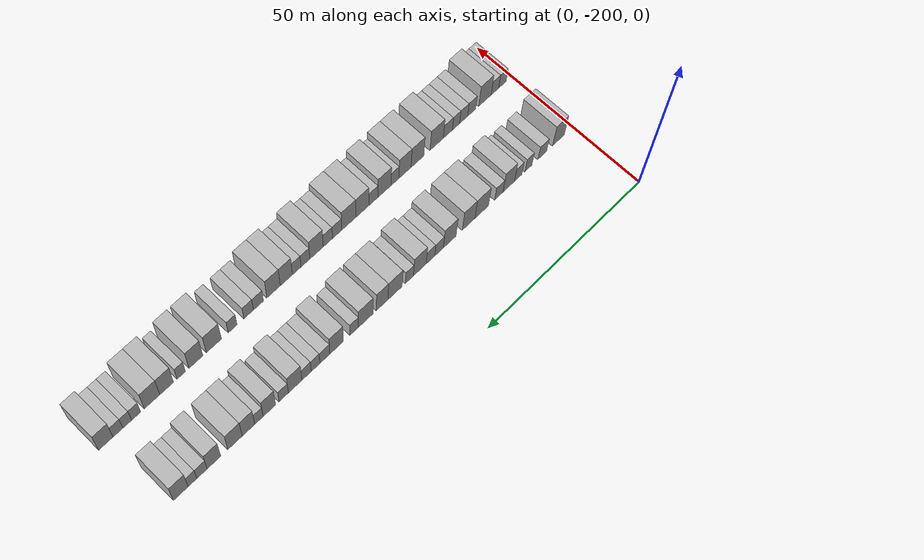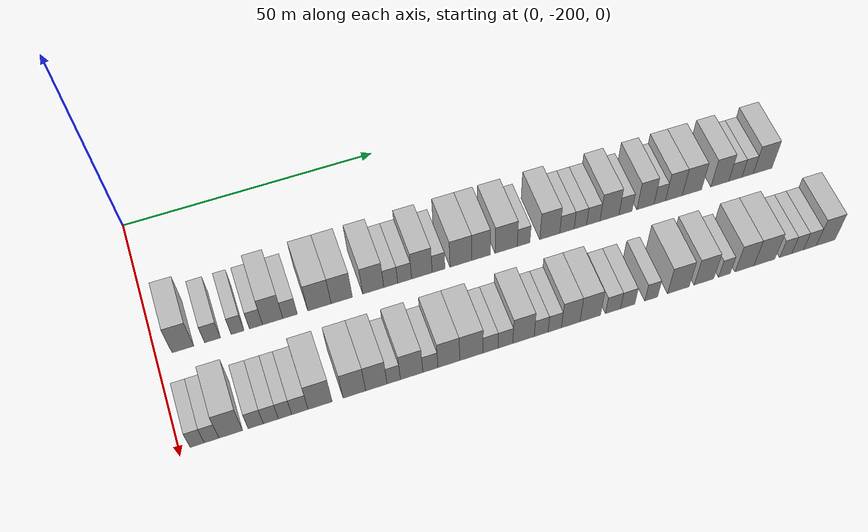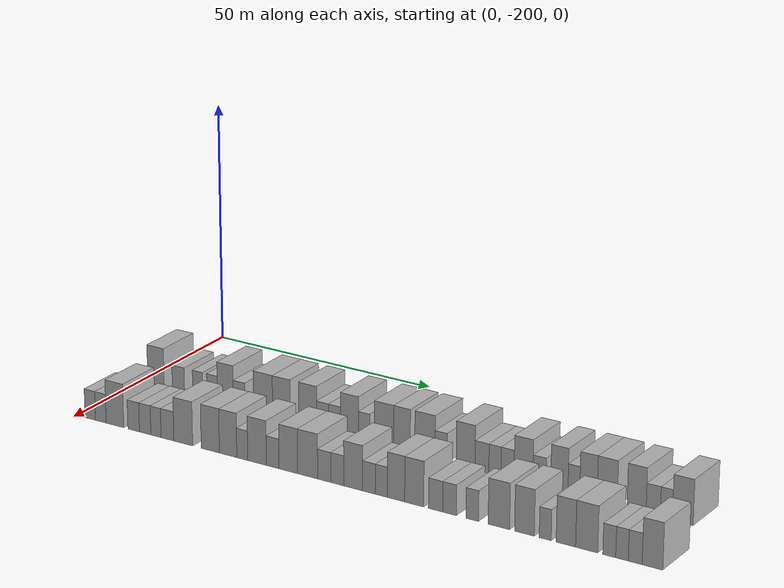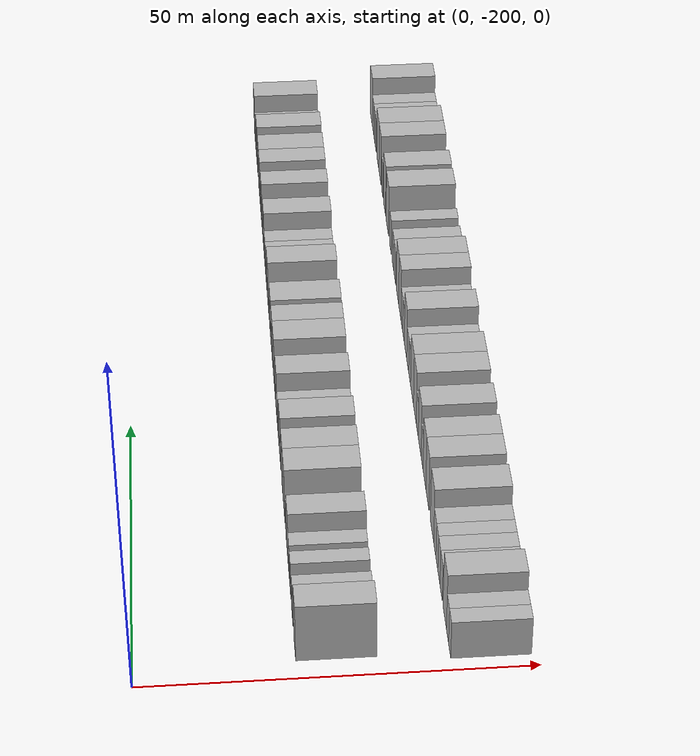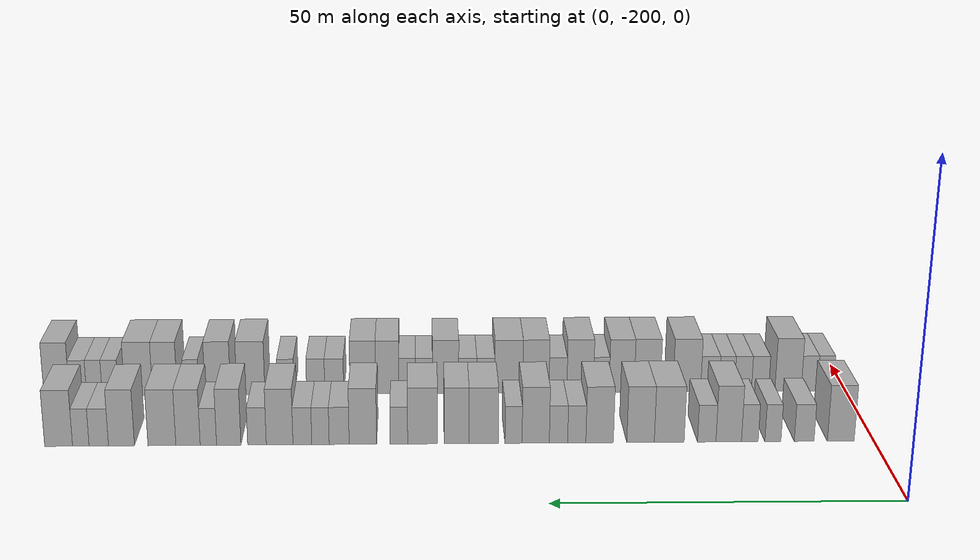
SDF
<sdf version="1.6">
 <world name="default">
  <model name="building_1">
   <static>1</static>
   <pose>25.0000 -194.9963 0 0.000000 0.000000 0.000000</pose>
   <link name="link">
    <pose>0 0 4.50 0 0 0</pose>
    <collision name="collision"><geometry><box><size>10.0000 4.0073 9.0000</size></box></geometry></collision>
    <visual name="visual">
     <cast_shadows>0</cast_shadows>
     <geometry><box><size>10.0000 4.0073 9.0000</size></box></geometry>
     <material>
      <script>
       <uri>model://HANNAS_wall/materials/scripts</uri>
       <uri>model://HANNAS_wall/materials/textures</uri>
       <name>vrc/HANNAS_wall</name>
      </script>
     </material>
    </visual>
   </link>
  </model>
  <model name="building_2">
   <static>1</static>
   <pose>25.0000 -189.5144 0 0.000000 0.000000 0.000000</pose>
   <link name="link">
    <pose>0 0 3.00 0 0 0</pose>
    <collision name="collision"><geometry><box><size>10.0000 2.9565 6.0000</size></box></geometry></collision>
    <visual name="visual">
     <cast_shadows>0</cast_shadows>
     <geometry><box><size>10.0000 2.9565 6.0000</size></box></geometry>
     <material>
      <script>
       <uri>model://HANNAS_wall/materials/scripts</uri>
       <uri>model://HANNAS_wall/materials/textures</uri>
       <name>vrc/HANNAS_wall</name>
      </script>
     </material>
    </visual>
   </link>
  </model>
  <model name="building_3">
   <static>1</static>
   <pose>25.0000 -184.8351 0 0.000000 0.000000 0.000000</pose>
   <link name="link">
    <pose>0 0 3.00 0 0 0</pose>
    <collision name="collision"><geometry><box><size>10.0000 2.4023 6.0000</size></box></geometry></collision>
    <visual name="visual">
     <cast_shadows>0</cast_shadows>
     <geometry><box><size>10.0000 2.4023 6.0000</size></box></geometry>
     <material>
      <script>
       <uri>model://HANNAS_wall/materials/scripts</uri>
       <uri>model://HANNAS_wall/materials/textures</uri>
       <name>vrc/HANNAS_wall</name>
      </script>
     </material>
    </visual>
   </link>
  </model>
  <model name="building_4">
   <static>1</static>
   <pose>25.0000 -181.3856 0 0.000000 0.000000 0.000000</pose>
   <link name="link">
    <pose>0 0 3.00 0 0 0</pose>
    <collision name="collision"><geometry><box><size>10.0000 2.4968 6.0000</size></box></geometry></collision>
    <visual name="visual">
     <cast_shadows>0</cast_shadows>
     <geometry><box><size>10.0000 2.4968 6.0000</size></box></geometry>
     <material>
      <script>
       <uri>model://HANNAS_wall/materials/scripts</uri>
       <uri>model://HANNAS_wall/materials/textures</uri>
       <name>vrc/HANNAS_wall</name>
      </script>
     </material>
    </visual>
   </link>
  </model>
  <model name="building_5">
   <static>1</static>
   <pose>25.0000 -178.2286 0 0.000000 0.000000 0.000000</pose>
   <link name="link">
    <pose>0 0 4.50 0 0 0</pose>
    <collision name="collision"><geometry><box><size>10.0000 3.8172 9.0000</size></box></geometry></collision>
    <visual name="visual">
     <cast_shadows>0</cast_shadows>
     <geometry><box><size>10.0000 3.8172 9.0000</size></box></geometry>
     <material>
      <script>
       <uri>model://HANNAS_wall/materials/scripts</uri>
       <uri>model://HANNAS_wall/materials/textures</uri>
       <name>vrc/HANNAS_wall</name>
      </script>
     </material>
    </visual>
   </link>
  </model>
  <model name="building_6">
   <static>1</static>
   <pose>25.0000 -174.9447 0 0.000000 0.000000 0.000000</pose>
   <link name="link">
    <pose>0 0 3.00 0 0 0</pose>
    <collision name="collision"><geometry><box><size>10.0000 2.7505 6.0000</size></box></geometry></collision>
    <visual name="visual">
     <cast_shadows>0</cast_shadows>
     <geometry><box><size>10.0000 2.7505 6.0000</size></box></geometry>
     <material>
      <script>
       <uri>model://HANNAS_wall/materials/scripts</uri>
       <uri>model://HANNAS_wall/materials/textures</uri>
       <name>vrc/HANNAS_wall</name>
      </script>
     </material>
    </visual>
   </link>
  </model>
  <model name="building_7">
   <static>1</static>
   <pose>25.0000 -169.3398 0 0.000000 0.000000 0.000000</pose>
   <link name="link">
    <pose>0 0 4.50 0 0 0</pose>
    <collision name="collision"><geometry><box><size>10.0000 4.4594 9.0000</size></box></geometry></collision>
    <visual name="visual">
     <cast_shadows>0</cast_shadows>
     <geometry><box><size>10.0000 4.4594 9.0000</size></box></geometry>
     <material>
      <script>
       <uri>model://HANNAS_wall/materials/scripts</uri>
       <uri>model://HANNAS_wall/materials/textures</uri>
       <name>vrc/HANNAS_wall</name>
      </script>
     </material>
    </visual>
   </link>
  </model>
  <model name="building_8">
   <static>1</static>
   <pose>25.0000 -165.0599 0 0.000000 0.000000 0.000000</pose>
   <link name="link">
    <pose>0 0 4.50 0 0 0</pose>
    <collision name="collision"><geometry><box><size>10.0000 4.1004 9.0000</size></box></geometry></collision>
    <visual name="visual">
     <cast_shadows>0</cast_shadows>
     <geometry><box><size>10.0000 4.1004 9.0000</size></box></geometry>
     <material>
      <script>
       <uri>model://HANNAS_wall/materials/scripts</uri>
       <uri>model://HANNAS_wall/materials/textures</uri>
       <name>vrc/HANNAS_wall</name>
      </script>
     </material>
    </visual>
   </link>
  </model>
  <model name="building_9">
   <static>1</static>
   <pose>25.0000 -158.9554 0 0.000000 0.000000 0.000000</pose>
   <link name="link">
    <pose>0 0 4.50 0 0 0</pose>
    <collision name="collision"><geometry><box><size>10.0000 4.1084 9.0000</size></box></geometry></collision>
    <visual name="visual">
     <cast_shadows>0</cast_shadows>
     <geometry><box><size>10.0000 4.1084 9.0000</size></box></geometry>
     <material>
      <script>
       <uri>model://HANNAS_wall/materials/scripts</uri>
       <uri>model://HANNAS_wall/materials/textures</uri>
       <name>vrc/HANNAS_wall</name>
      </script>
     </material>
    </visual>
   </link>
  </model>
  <model name="building_10">
   <static>1</static>
   <pose>25.0000 -155.5419 0 0.000000 0.000000 0.000000</pose>
   <link name="link">
    <pose>0 0 3.00 0 0 0</pose>
    <collision name="collision"><geometry><box><size>10.0000 2.7187 6.0000</size></box></geometry></collision>
    <visual name="visual">
     <cast_shadows>0</cast_shadows>
     <geometry><box><size>10.0000 2.7187 6.0000</size></box></geometry>
     <material>
      <script>
       <uri>model://HANNAS_wall/materials/scripts</uri>
       <uri>model://HANNAS_wall/materials/textures</uri>
       <name>vrc/HANNAS_wall</name>
      </script>
     </material>
    </visual>
   </link>
  </model>
  <model name="building_11">
   <static>1</static>
   <pose>25.0000 -152.8195 0 0.000000 0.000000 0.000000</pose>
   <link name="link">
    <pose>0 0 3.00 0 0 0</pose>
    <collision name="collision"><geometry><box><size>10.0000 2.7261 6.0000</size></box></geometry></collision>
    <visual name="visual">
     <cast_shadows>0</cast_shadows>
     <geometry><box><size>10.0000 2.7261 6.0000</size></box></geometry>
     <material>
      <script>
       <uri>model://HANNAS_wall/materials/scripts</uri>
       <uri>model://HANNAS_wall/materials/textures</uri>
       <name>vrc/HANNAS_wall</name>
      </script>
     </material>
    </visual>
   </link>
  </model>
  <model name="building_12">
   <static>1</static>
   <pose>25.0000 -149.4233 0 0.000000 0.000000 0.000000</pose>
   <link name="link">
    <pose>0 0 4.50 0 0 0</pose>
    <collision name="collision"><geometry><box><size>10.0000 4.0665 9.0000</size></box></geometry></collision>
    <visual name="visual">
     <cast_shadows>0</cast_shadows>
     <geometry><box><size>10.0000 4.0665 9.0000</size></box></geometry>
     <material>
      <script>
       <uri>model://HANNAS_wall/materials/scripts</uri>
       <uri>model://HANNAS_wall/materials/textures</uri>
       <name>vrc/HANNAS_wall</name>
      </script>
     </material>
    </visual>
   </link>
  </model>
  <model name="building_13">
   <static>1</static>
   <pose>25.0000 -146.1263 0 0.000000 0.000000 0.000000</pose>
   <link name="link">
    <pose>0 0 3.00 0 0 0</pose>
    <collision name="collision"><geometry><box><size>10.0000 2.5274 6.0000</size></box></geometry></collision>
    <visual name="visual">
     <cast_shadows>0</cast_shadows>
     <geometry><box><size>10.0000 2.5274 6.0000</size></box></geometry>
     <material>
      <script>
       <uri>model://HANNAS_wall/materials/scripts</uri>
       <uri>model://HANNAS_wall/materials/textures</uri>
       <name>vrc/HANNAS_wall</name>
      </script>
     </material>
    </visual>
   </link>
  </model>
  <model name="building_14">
   <static>1</static>
   <pose>25.0000 -141.6784 0 0.000000 0.000000 0.000000</pose>
   <link name="link">
    <pose>0 0 4.50 0 0 0</pose>
    <collision name="collision"><geometry><box><size>10.0000 4.3684 9.0000</size></box></geometry></collision>
    <visual name="visual">
     <cast_shadows>0</cast_shadows>
     <geometry><box><size>10.0000 4.3684 9.0000</size></box></geometry>
     <material>
      <script>
       <uri>model://HANNAS_wall/materials/scripts</uri>
       <uri>model://HANNAS_wall/materials/textures</uri>
       <name>vrc/HANNAS_wall</name>
      </script>
     </material>
    </visual>
   </link>
  </model>
  <model name="building_15">
   <static>1</static>
   <pose>25.0000 -137.6633 0 0.000000 0.000000 0.000000</pose>
   <link name="link">
    <pose>0 0 4.50 0 0 0</pose>
    <collision name="collision"><geometry><box><size>10.0000 3.6618 9.0000</size></box></geometry></collision>
    <visual name="visual">
     <cast_shadows>0</cast_shadows>
     <geometry><box><size>10.0000 3.6618 9.0000</size></box></geometry>
     <material>
      <script>
       <uri>model://HANNAS_wall/materials/scripts</uri>
       <uri>model://HANNAS_wall/materials/textures</uri>
       <name>vrc/HANNAS_wall</name>
      </script>
     </material>
    </visual>
   </link>
  </model>
  <model name="building_16">
   <static>1</static>
   <pose>25.0000 -132.6018 0 0.000000 0.000000 0.000000</pose>
   <link name="link">
    <pose>0 0 4.50 0 0 0</pose>
    <collision name="collision"><geometry><box><size>10.0000 4.4613 9.0000</size></box></geometry></collision>
    <visual name="visual">
     <cast_shadows>0</cast_shadows>
     <geometry><box><size>10.0000 4.4613 9.0000</size></box></geometry>
     <material>
      <script>
       <uri>model://HANNAS_wall/materials/scripts</uri>
       <uri>model://HANNAS_wall/materials/textures</uri>
       <name>vrc/HANNAS_wall</name>
      </script>
     </material>
    </visual>
   </link>
  </model>
  <model name="building_17">
   <static>1</static>
   <pose>25.0000 -129.0669 0 0.000000 0.000000 0.000000</pose>
   <link name="link">
    <pose>0 0 3.00 0 0 0</pose>
    <collision name="collision"><geometry><box><size>10.0000 2.6084 6.0000</size></box></geometry></collision>
    <visual name="visual">
     <cast_shadows>0</cast_shadows>
     <geometry><box><size>10.0000 2.6084 6.0000</size></box></geometry>
     <material>
      <script>
       <uri>model://HANNAS_wall/materials/scripts</uri>
       <uri>model://HANNAS_wall/materials/textures</uri>
       <name>vrc/HANNAS_wall</name>
      </script>
     </material>
    </visual>
   </link>
  </model>
  <model name="building_18">
   <static>1</static>
   <pose>25.0000 -123.7205 0 0.000000 0.000000 0.000000</pose>
   <link name="link">
    <pose>0 0 4.50 0 0 0</pose>
    <collision name="collision"><geometry><box><size>10.0000 4.0843 9.0000</size></box></geometry></collision>
    <visual name="visual">
     <cast_shadows>0</cast_shadows>
     <geometry><box><size>10.0000 4.0843 9.0000</size></box></geometry>
     <material>
      <script>
       <uri>model://HANNAS_wall/materials/scripts</uri>
       <uri>model://HANNAS_wall/materials/textures</uri>
       <name>vrc/HANNAS_wall</name>
      </script>
     </material>
    </visual>
   </link>
  </model>
  <model name="building_19">
   <static>1</static>
   <pose>25.0000 -120.1962 0 0.000000 0.000000 0.000000</pose>
   <link name="link">
    <pose>0 0 3.00 0 0 0</pose>
    <collision name="collision"><geometry><box><size>10.0000 2.9643 6.0000</size></box></geometry></collision>
    <visual name="visual">
     <cast_shadows>0</cast_shadows>
     <geometry><box><size>10.0000 2.9643 6.0000</size></box></geometry>
     <material>
      <script>
       <uri>model://HANNAS_wall/materials/scripts</uri>
       <uri>model://HANNAS_wall/materials/textures</uri>
       <name>vrc/HANNAS_wall</name>
      </script>
     </material>
    </visual>
   </link>
  </model>
  <model name="building_20">
   <static>1</static>
   <pose>25.0000 -117.4241 0 0.000000 0.000000 0.000000</pose>
   <link name="link">
    <pose>0 0 3.00 0 0 0</pose>
    <collision name="collision"><geometry><box><size>10.0000 2.5798 6.0000</size></box></geometry></collision>
    <visual name="visual">
     <cast_shadows>0</cast_shadows>
     <geometry><box><size>10.0000 2.5798 6.0000</size></box></geometry>
     <material>
      <script>
       <uri>model://HANNAS_wall/materials/scripts</uri>
       <uri>model://HANNAS_wall/materials/textures</uri>
       <name>vrc/HANNAS_wall</name>
      </script>
     </material>
    </visual>
   </link>
  </model>
  <model name="building_21">
   <static>1</static>
   <pose>25.0000 -114.7370 0 0.000000 0.000000 0.000000</pose>
   <link name="link">
    <pose>0 0 3.00 0 0 0</pose>
    <collision name="collision"><geometry><box><size>10.0000 2.7944 6.0000</size></box></geometry></collision>
    <visual name="visual">
     <cast_shadows>0</cast_shadows>
     <geometry><box><size>10.0000 2.7944 6.0000</size></box></geometry>
     <material>
      <script>
       <uri>model://HANNAS_wall/materials/scripts</uri>
       <uri>model://HANNAS_wall/materials/textures</uri>
       <name>vrc/HANNAS_wall</name>
      </script>
     </material>
    </visual>
   </link>
  </model>
  <model name="building_22">
   <static>1</static>
   <pose>25.0000 -111.3566 0 0.000000 0.000000 0.000000</pose>
   <link name="link">
    <pose>0 0 4.50 0 0 0</pose>
    <collision name="collision"><geometry><box><size>10.0000 3.9664 9.0000</size></box></geometry></collision>
    <visual name="visual">
     <cast_shadows>0</cast_shadows>
     <geometry><box><size>10.0000 3.9664 9.0000</size></box></geometry>
     <material>
      <script>
       <uri>model://HANNAS_wall/materials/scripts</uri>
       <uri>model://HANNAS_wall/materials/textures</uri>
       <name>vrc/HANNAS_wall</name>
      </script>
     </material>
    </visual>
   </link>
  </model>
  <model name="building_23">
   <static>1</static>
   <pose>25.0000 -107.9977 0 0.000000 0.000000 0.000000</pose>
   <link name="link">
    <pose>0 0 3.00 0 0 0</pose>
    <collision name="collision"><geometry><box><size>10.0000 2.7516 6.0000</size></box></geometry></collision>
    <visual name="visual">
     <cast_shadows>0</cast_shadows>
     <geometry><box><size>10.0000 2.7516 6.0000</size></box></geometry>
     <material>
      <script>
       <uri>model://HANNAS_wall/materials/scripts</uri>
       <uri>model://HANNAS_wall/materials/textures</uri>
       <name>vrc/HANNAS_wall</name>
      </script>
     </material>
    </visual>
   </link>
  </model>
  <model name="building_24">
   <static>1</static>
   <pose>25.0000 -103.8148 0 0.000000 0.000000 0.000000</pose>
   <link name="link">
    <pose>0 0 4.50 0 0 0</pose>
    <collision name="collision"><geometry><box><size>10.0000 3.6142 9.0000</size></box></geometry></collision>
    <visual name="visual">
     <cast_shadows>0</cast_shadows>
     <geometry><box><size>10.0000 3.6142 9.0000</size></box></geometry>
     <material>
      <script>
       <uri>model://HANNAS_wall/materials/scripts</uri>
       <uri>model://HANNAS_wall/materials/textures</uri>
       <name>vrc/HANNAS_wall</name>
      </script>
     </material>
    </visual>
   </link>
  </model>
  <model name="building_25">
   <static>1</static>
   <pose>25.0000 -100.7934 0 0.000000 0.000000 0.000000</pose>
   <link name="link">
    <pose>0 0 3.00 0 0 0</pose>
    <collision name="collision"><geometry><box><size>10.0000 2.4286 6.0000</size></box></geometry></collision>
    <visual name="visual">
     <cast_shadows>0</cast_shadows>
     <geometry><box><size>10.0000 2.4286 6.0000</size></box></geometry>
     <material>
      <script>
       <uri>model://HANNAS_wall/materials/scripts</uri>
       <uri>model://HANNAS_wall/materials/textures</uri>
       <name>vrc/HANNAS_wall</name>
      </script>
     </material>
    </visual>
   </link>
  </model>
  <model name="building_26">
   <static>1</static>
   <pose>25.0000 -97.7756 0 0.000000 0.000000 0.000000</pose>
   <link name="link">
    <pose>0 0 4.50 0 0 0</pose>
    <collision name="collision"><geometry><box><size>10.0000 3.6071 9.0000</size></box></geometry></collision>
    <visual name="visual">
     <cast_shadows>0</cast_shadows>
     <geometry><box><size>10.0000 3.6071 9.0000</size></box></geometry>
     <material>
      <script>
       <uri>model://HANNAS_wall/materials/scripts</uri>
       <uri>model://HANNAS_wall/materials/textures</uri>
       <name>vrc/HANNAS_wall</name>
      </script>
     </material>
    </visual>
   </link>
  </model>
  <model name="building_27">
   <static>1</static>
   <pose>25.0000 -93.9097 0 0.000000 0.000000 0.000000</pose>
   <link name="link">
    <pose>0 0 4.50 0 0 0</pose>
    <collision name="collision"><geometry><box><size>10.0000 4.1248 9.0000</size></box></geometry></collision>
    <visual name="visual">
     <cast_shadows>0</cast_shadows>
     <geometry><box><size>10.0000 4.1248 9.0000</size></box></geometry>
     <material>
      <script>
       <uri>model://HANNAS_wall/materials/scripts</uri>
       <uri>model://HANNAS_wall/materials/textures</uri>
       <name>vrc/HANNAS_wall</name>
      </script>
     </material>
    </visual>
   </link>
  </model>
  <model name="building_28">
   <static>1</static>
   <pose>25.0000 -87.9242 0 0.000000 0.000000 0.000000</pose>
   <link name="link">
    <pose>0 0 4.50 0 0 0</pose>
    <collision name="collision"><geometry><box><size>10.0000 3.8462 9.0000</size></box></geometry></collision>
    <visual name="visual">
     <cast_shadows>0</cast_shadows>
     <geometry><box><size>10.0000 3.8462 9.0000</size></box></geometry>
     <material>
      <script>
       <uri>model://HANNAS_wall/materials/scripts</uri>
       <uri>model://HANNAS_wall/materials/textures</uri>
       <name>vrc/HANNAS_wall</name>
      </script>
     </material>
    </visual>
   </link>
  </model>
  <model name="building_29">
   <static>1</static>
   <pose>25.0000 -84.5672 0 0.000000 0.000000 0.000000</pose>
   <link name="link">
    <pose>0 0 3.00 0 0 0</pose>
    <collision name="collision"><geometry><box><size>10.0000 2.8677 6.0000</size></box></geometry></collision>
    <visual name="visual">
     <cast_shadows>0</cast_shadows>
     <geometry><box><size>10.0000 2.8677 6.0000</size></box></geometry>
     <material>
      <script>
       <uri>model://HANNAS_wall/materials/scripts</uri>
       <uri>model://HANNAS_wall/materials/textures</uri>
       <name>vrc/HANNAS_wall</name>
      </script>
     </material>
    </visual>
   </link>
  </model>
  <model name="building_30">
   <static>1</static>
   <pose>25.0000 -81.9116 0 0.000000 0.000000 0.000000</pose>
   <link name="link">
    <pose>0 0 3.00 0 0 0</pose>
    <collision name="collision"><geometry><box><size>10.0000 2.4435 6.0000</size></box></geometry></collision>
    <visual name="visual">
     <cast_shadows>0</cast_shadows>
     <geometry><box><size>10.0000 2.4435 6.0000</size></box></geometry>
     <material>
      <script>
       <uri>model://HANNAS_wall/materials/scripts</uri>
       <uri>model://HANNAS_wall/materials/textures</uri>
       <name>vrc/HANNAS_wall</name>
      </script>
     </material>
    </visual>
   </link>
  </model>
  <model name="building_31">
   <static>1</static>
   <pose>25.0000 -78.6336 0 0.000000 0.000000 0.000000</pose>
   <link name="link">
    <pose>0 0 4.50 0 0 0</pose>
    <collision name="collision"><geometry><box><size>10.0000 4.1126 9.0000</size></box></geometry></collision>
    <visual name="visual">
     <cast_shadows>0</cast_shadows>
     <geometry><box><size>10.0000 4.1126 9.0000</size></box></geometry>
     <material>
      <script>
       <uri>model://HANNAS_wall/materials/scripts</uri>
       <uri>model://HANNAS_wall/materials/textures</uri>
       <name>vrc/HANNAS_wall</name>
      </script>
     </material>
    </visual>
   </link>
  </model>
  <model name="building_97">
   <static>1</static>
   <pose>44.0000 -196.7429 0 0.000000 0.000000 0.000000</pose>
   <link name="link">
    <pose>0 0 3.00 0 0 0</pose>
    <collision name="collision"><geometry><box><size>10.0000 2.5143 6.0000</size></box></geometry></collision>
    <visual name="visual">
     <cast_shadows>0</cast_shadows>
     <geometry><box><size>10.0000 2.5143 6.0000</size></box></geometry>
     <material>
      <script>
       <uri>model://HANNAS_wall/materials/scripts</uri>
       <uri>model://HANNAS_wall/materials/textures</uri>
       <name>vrc/HANNAS_wall</name>
      </script>
     </material>
    </visual>
   </link>
  </model>
  <model name="building_98">
   <static>1</static>
   <pose>44.0000 -194.1831 0 0.000000 0.000000 0.000000</pose>
   <link name="link">
    <pose>0 0 3.00 0 0 0</pose>
    <collision name="collision"><geometry><box><size>10.0000 2.6053 6.0000</size></box></geometry></collision>
    <visual name="visual">
     <cast_shadows>0</cast_shadows>
     <geometry><box><size>10.0000 2.6053 6.0000</size></box></geometry>
     <material>
      <script>
       <uri>model://HANNAS_wall/materials/scripts</uri>
       <uri>model://HANNAS_wall/materials/textures</uri>
       <name>vrc/HANNAS_wall</name>
      </script>
     </material>
    </visual>
   </link>
  </model>
  <model name="building_99">
   <static>1</static>
   <pose>44.0000 -190.7804 0 0.000000 0.000000 0.000000</pose>
   <link name="link">
    <pose>0 0 4.50 0 0 0</pose>
    <collision name="collision"><geometry><box><size>10.0000 4.2001 9.0000</size></box></geometry></collision>
    <visual name="visual">
     <cast_shadows>0</cast_shadows>
     <geometry><box><size>10.0000 4.2001 9.0000</size></box></geometry>
     <material>
      <script>
       <uri>model://HANNAS_wall/materials/scripts</uri>
       <uri>model://HANNAS_wall/materials/textures</uri>
       <name>vrc/HANNAS_wall</name>
      </script>
     </material>
    </visual>
   </link>
  </model>
  <model name="building_100">
   <static>1</static>
   <pose>44.0000 -186.3104 0 0.000000 0.000000 0.000000</pose>
   <link name="link">
    <pose>0 0 3.00 0 0 0</pose>
    <collision name="collision"><geometry><box><size>10.0000 2.7399 6.0000</size></box></geometry></collision>
    <visual name="visual">
     <cast_shadows>0</cast_shadows>
     <geometry><box><size>10.0000 2.7399 6.0000</size></box></geometry>
     <material>
      <script>
       <uri>model://HANNAS_wall/materials/scripts</uri>
       <uri>model://HANNAS_wall/materials/textures</uri>
       <name>vrc/HANNAS_wall</name>
      </script>
     </material>
    </visual>
   </link>
  </model>
  <model name="building_101">
   <static>1</static>
   <pose>44.0000 -183.5885 0 0.000000 0.000000 0.000000</pose>
   <link name="link">
    <pose>0 0 3.00 0 0 0</pose>
    <collision name="collision"><geometry><box><size>10.0000 2.7039 6.0000</size></box></geometry></collision>
    <visual name="visual">
     <cast_shadows>0</cast_shadows>
     <geometry><box><size>10.0000 2.7039 6.0000</size></box></geometry>
     <material>
      <script>
       <uri>model://HANNAS_wall/materials/scripts</uri>
       <uri>model://HANNAS_wall/materials/textures</uri>
       <name>vrc/HANNAS_wall</name>
      </script>
     </material>
    </visual>
   </link>
  </model>
  <model name="building_102">
   <static>1</static>
   <pose>44.0000 -181.0269 0 0.000000 0.000000 0.000000</pose>
   <link name="link">
    <pose>0 0 3.00 0 0 0</pose>
    <collision name="collision"><geometry><box><size>10.0000 2.4192 6.0000</size></box></geometry></collision>
    <visual name="visual">
     <cast_shadows>0</cast_shadows>
     <geometry><box><size>10.0000 2.4192 6.0000</size></box></geometry>
     <material>
      <script>
       <uri>model://HANNAS_wall/materials/scripts</uri>
       <uri>model://HANNAS_wall/materials/textures</uri>
       <name>vrc/HANNAS_wall</name>
      </script>
     </material>
    </visual>
   </link>
  </model>
  <model name="building_103">
   <static>1</static>
   <pose>44.0000 -178.3280 0 0.000000 0.000000 0.000000</pose>
   <link name="link">
    <pose>0 0 3.00 0 0 0</pose>
    <collision name="collision"><geometry><box><size>10.0000 2.9787 6.0000</size></box></geometry></collision>
    <visual name="visual">
     <cast_shadows>0</cast_shadows>
     <geometry><box><size>10.0000 2.9787 6.0000</size></box></geometry>
     <material>
      <script>
       <uri>model://HANNAS_wall/materials/scripts</uri>
       <uri>model://HANNAS_wall/materials/textures</uri>
       <name>vrc/HANNAS_wall</name>
      </script>
     </material>
    </visual>
   </link>
  </model>
  <model name="building_104">
   <static>1</static>
   <pose>44.0000 -174.6346 0 0.000000 0.000000 0.000000</pose>
   <link name="link">
    <pose>0 0 4.50 0 0 0</pose>
    <collision name="collision"><geometry><box><size>10.0000 4.4080 9.0000</size></box></geometry></collision>
    <visual name="visual">
     <cast_shadows>0</cast_shadows>
     <geometry><box><size>10.0000 4.4080 9.0000</size></box></geometry>
     <material>
      <script>
       <uri>model://HANNAS_wall/materials/scripts</uri>
       <uri>model://HANNAS_wall/materials/textures</uri>
       <name>vrc/HANNAS_wall</name>
      </script>
     </material>
    </visual>
   </link>
  </model>
  <model name="building_105">
   <static>1</static>
   <pose>44.0000 -168.3418 0 0.000000 0.000000 0.000000</pose>
   <link name="link">
    <pose>0 0 4.50 0 0 0</pose>
    <collision name="collision"><geometry><box><size>10.0000 4.1777 9.0000</size></box></geometry></collision>
    <visual name="visual">
     <cast_shadows>0</cast_shadows>
     <geometry><box><size>10.0000 4.1777 9.0000</size></box></geometry>
     <material>
      <script>
       <uri>model://HANNAS_wall/materials/scripts</uri>
       <uri>model://HANNAS_wall/materials/textures</uri>
       <name>vrc/HANNAS_wall</name>
      </script>
     </material>
    </visual>
   </link>
  </model>
  <model name="building_106">
   <static>1</static>
   <pose>44.0000 -164.2579 0 0.000000 0.000000 0.000000</pose>
   <link name="link">
    <pose>0 0 4.50 0 0 0</pose>
    <collision name="collision"><geometry><box><size>10.0000 3.9900 9.0000</size></box></geometry></collision>
    <visual name="visual">
     <cast_shadows>0</cast_shadows>
     <geometry><box><size>10.0000 3.9900 9.0000</size></box></geometry>
     <material>
      <script>
       <uri>model://HANNAS_wall/materials/scripts</uri>
       <uri>model://HANNAS_wall/materials/textures</uri>
       <name>vrc/HANNAS_wall</name>
      </script>
     </material>
    </visual>
   </link>
  </model>
  <model name="building_107">
   <static>1</static>
   <pose>44.0000 -161.0139 0 0.000000 0.000000 0.000000</pose>
   <link name="link">
    <pose>0 0 3.00 0 0 0</pose>
    <collision name="collision"><geometry><box><size>10.0000 2.4980 6.0000</size></box></geometry></collision>
    <visual name="visual">
     <cast_shadows>0</cast_shadows>
     <geometry><box><size>10.0000 2.4980 6.0000</size></box></geometry>
     <material>
      <script>
       <uri>model://HANNAS_wall/materials/scripts</uri>
       <uri>model://HANNAS_wall/materials/textures</uri>
       <name>vrc/HANNAS_wall</name>
      </script>
     </material>
    </visual>
   </link>
  </model>
  <model name="building_108">
   <static>1</static>
   <pose>44.0000 -157.6567 0 0.000000 0.000000 0.000000</pose>
   <link name="link">
    <pose>0 0 4.50 0 0 0</pose>
    <collision name="collision"><geometry><box><size>10.0000 4.2163 9.0000</size></box></geometry></collision>
    <visual name="visual">
     <cast_shadows>0</cast_shadows>
     <geometry><box><size>10.0000 4.2163 9.0000</size></box></geometry>
     <material>
      <script>
       <uri>model://HANNAS_wall/materials/scripts</uri>
       <uri>model://HANNAS_wall/materials/textures</uri>
       <name>vrc/HANNAS_wall</name>
      </script>
     </material>
    </visual>
   </link>
  </model>
  <model name="building_109">
   <static>1</static>
   <pose>44.0000 -154.1267 0 0.000000 0.000000 0.000000</pose>
   <link name="link">
    <pose>0 0 3.00 0 0 0</pose>
    <collision name="collision"><geometry><box><size>10.0000 2.8436 6.0000</size></box></geometry></collision>
    <visual name="visual">
     <cast_shadows>0</cast_shadows>
     <geometry><box><size>10.0000 2.8436 6.0000</size></box></geometry>
     <material>
      <script>
       <uri>model://HANNAS_wall/materials/scripts</uri>
       <uri>model://HANNAS_wall/materials/textures</uri>
       <name>vrc/HANNAS_wall</name>
      </script>
     </material>
    </visual>
   </link>
  </model>
  <model name="building_110">
   <static>1</static>
   <pose>44.0000 -150.6268 0 0.000000 0.000000 0.000000</pose>
   <link name="link">
    <pose>0 0 4.50 0 0 0</pose>
    <collision name="collision"><geometry><box><size>10.0000 4.1564 9.0000</size></box></geometry></collision>
    <visual name="visual">
     <cast_shadows>0</cast_shadows>
     <geometry><box><size>10.0000 4.1564 9.0000</size></box></geometry>
     <material>
      <script>
       <uri>model://HANNAS_wall/materials/scripts</uri>
       <uri>model://HANNAS_wall/materials/textures</uri>
       <name>vrc/HANNAS_wall</name>
      </script>
     </material>
    </visual>
   </link>
  </model>
  <model name="building_111">
   <static>1</static>
   <pose>44.0000 -146.3213 0 0.000000 0.000000 0.000000</pose>
   <link name="link">
    <pose>0 0 4.50 0 0 0</pose>
    <collision name="collision"><geometry><box><size>10.0000 4.4545 9.0000</size></box></geometry></collision>
    <visual name="visual">
     <cast_shadows>0</cast_shadows>
     <geometry><box><size>10.0000 4.4545 9.0000</size></box></geometry>
     <material>
      <script>
       <uri>model://HANNAS_wall/materials/scripts</uri>
       <uri>model://HANNAS_wall/materials/textures</uri>
       <name>vrc/HANNAS_wall</name>
      </script>
     </material>
    </visual>
   </link>
  </model>
  <model name="building_112">
   <static>1</static>
   <pose>44.0000 -142.6599 0 0.000000 0.000000 0.000000</pose>
   <link name="link">
    <pose>0 0 3.00 0 0 0</pose>
    <collision name="collision"><geometry><box><size>10.0000 2.8682 6.0000</size></box></geometry></collision>
    <visual name="visual">
     <cast_shadows>0</cast_shadows>
     <geometry><box><size>10.0000 2.8682 6.0000</size></box></geometry>
     <material>
      <script>
       <uri>model://HANNAS_wall/materials/scripts</uri>
       <uri>model://HANNAS_wall/materials/textures</uri>
       <name>vrc/HANNAS_wall</name>
      </script>
     </material>
    </visual>
   </link>
  </model>
  <model name="building_113">
   <static>1</static>
   <pose>44.0000 -139.8003 0 0.000000 0.000000 0.000000</pose>
   <link name="link">
    <pose>0 0 3.00 0 0 0</pose>
    <collision name="collision"><geometry><box><size>10.0000 2.8511 6.0000</size></box></geometry></collision>
    <visual name="visual">
     <cast_shadows>0</cast_shadows>
     <geometry><box><size>10.0000 2.8511 6.0000</size></box></geometry>
     <material>
      <script>
       <uri>model://HANNAS_wall/materials/scripts</uri>
       <uri>model://HANNAS_wall/materials/textures</uri>
       <name>vrc/HANNAS_wall</name>
      </script>
     </material>
    </visual>
   </link>
  </model>
  <model name="building_114">
   <static>1</static>
   <pose>44.0000 -136.2967 0 0.000000 0.000000 0.000000</pose>
   <link name="link">
    <pose>0 0 4.50 0 0 0</pose>
    <collision name="collision"><geometry><box><size>10.0000 4.1560 9.0000</size></box></geometry></collision>
    <visual name="visual">
     <cast_shadows>0</cast_shadows>
     <geometry><box><size>10.0000 4.1560 9.0000</size></box></geometry>
     <material>
      <script>
       <uri>model://HANNAS_wall/materials/scripts</uri>
       <uri>model://HANNAS_wall/materials/textures</uri>
       <name>vrc/HANNAS_wall</name>
      </script>
     </material>
    </visual>
   </link>
  </model>
  <model name="building_115">
   <static>1</static>
   <pose>44.0000 -132.8632 0 0.000000 0.000000 0.000000</pose>
   <link name="link">
    <pose>0 0 3.00 0 0 0</pose>
    <collision name="collision"><geometry><box><size>10.0000 2.7110 6.0000</size></box></geometry></collision>
    <visual name="visual">
     <cast_shadows>0</cast_shadows>
     <geometry><box><size>10.0000 2.7110 6.0000</size></box></geometry>
     <material>
      <script>
       <uri>model://HANNAS_wall/materials/scripts</uri>
       <uri>model://HANNAS_wall/materials/textures</uri>
       <name>vrc/HANNAS_wall</name>
      </script>
     </material>
    </visual>
   </link>
  </model>
  <model name="building_116">
   <static>1</static>
   <pose>44.0000 -130.1936 0 0.000000 0.000000 0.000000</pose>
   <link name="link">
    <pose>0 0 3.00 0 0 0</pose>
    <collision name="collision"><geometry><box><size>10.0000 2.6282 6.0000</size></box></geometry></collision>
    <visual name="visual">
     <cast_shadows>0</cast_shadows>
     <geometry><box><size>10.0000 2.6282 6.0000</size></box></geometry>
     <material>
      <script>
       <uri>model://HANNAS_wall/materials/scripts</uri>
       <uri>model://HANNAS_wall/materials/textures</uri>
       <name>vrc/HANNAS_wall</name>
      </script>
     </material>
    </visual>
   </link>
  </model>
  <model name="building_117">
   <static>1</static>
   <pose>44.0000 -127.0440 0 0.000000 0.000000 0.000000</pose>
   <link name="link">
    <pose>0 0 4.50 0 0 0</pose>
    <collision name="collision"><geometry><box><size>10.0000 3.6710 9.0000</size></box></geometry></collision>
    <visual name="visual">
     <cast_shadows>0</cast_shadows>
     <geometry><box><size>10.0000 3.6710 9.0000</size></box></geometry>
     <material>
      <script>
       <uri>model://HANNAS_wall/materials/scripts</uri>
       <uri>model://HANNAS_wall/materials/textures</uri>
       <name>vrc/HANNAS_wall</name>
      </script>
     </material>
    </visual>
   </link>
  </model>
  <model name="building_118">
   <static>1</static>
   <pose>44.0000 -123.1783 0 0.000000 0.000000 0.000000</pose>
   <link name="link">
    <pose>0 0 4.50 0 0 0</pose>
    <collision name="collision"><geometry><box><size>10.0000 4.0603 9.0000</size></box></geometry></collision>
    <visual name="visual">
     <cast_shadows>0</cast_shadows>
     <geometry><box><size>10.0000 4.0603 9.0000</size></box></geometry>
     <material>
      <script>
       <uri>model://HANNAS_wall/materials/scripts</uri>
       <uri>model://HANNAS_wall/materials/textures</uri>
       <name>vrc/HANNAS_wall</name>
      </script>
     </material>
    </visual>
   </link>
  </model>
  <model name="building_119">
   <static>1</static>
   <pose>44.0000 -118.6489 0 0.000000 0.000000 0.000000</pose>
   <link name="link">
    <pose>0 0 3.00 0 0 0</pose>
    <collision name="collision"><geometry><box><size>10.0000 2.9984 6.0000</size></box></geometry></collision>
    <visual name="visual">
     <cast_shadows>0</cast_shadows>
     <geometry><box><size>10.0000 2.9984 6.0000</size></box></geometry>
     <material>
      <script>
       <uri>model://HANNAS_wall/materials/scripts</uri>
       <uri>model://HANNAS_wall/materials/textures</uri>
       <name>vrc/HANNAS_wall</name>
      </script>
     </material>
    </visual>
   </link>
  </model>
  <model name="building_120">
   <static>1</static>
   <pose>44.0000 -115.7157 0 0.000000 0.000000 0.000000</pose>
   <link name="link">
    <pose>0 0 3.00 0 0 0</pose>
    <collision name="collision"><geometry><box><size>10.0000 2.8680 6.0000</size></box></geometry></collision>
    <visual name="visual">
     <cast_shadows>0</cast_shadows>
     <geometry><box><size>10.0000 2.8680 6.0000</size></box></geometry>
     <material>
      <script>
       <uri>model://HANNAS_wall/materials/scripts</uri>
       <uri>model://HANNAS_wall/materials/textures</uri>
       <name>vrc/HANNAS_wall</name>
      </script>
     </material>
    </visual>
   </link>
  </model>
  <model name="building_121">
   <static>1</static>
   <pose>44.0000 -110.9774 0 0.000000 0.000000 0.000000</pose>
   <link name="link">
    <pose>0 0 3.00 0 0 0</pose>
    <collision name="collision"><geometry><box><size>10.0000 2.6087 6.0000</size></box></geometry></collision>
    <visual name="visual">
     <cast_shadows>0</cast_shadows>
     <geometry><box><size>10.0000 2.6087 6.0000</size></box></geometry>
     <material>
      <script>
       <uri>model://HANNAS_wall/materials/scripts</uri>
       <uri>model://HANNAS_wall/materials/textures</uri>
       <name>vrc/HANNAS_wall</name>
      </script>
     </material>
    </visual>
   </link>
  </model>
  <model name="building_122">
   <static>1</static>
   <pose>44.0000 -105.4621 0 0.000000 0.000000 0.000000</pose>
   <link name="link">
    <pose>0 0 4.50 0 0 0</pose>
    <collision name="collision"><geometry><box><size>10.0000 4.4219 9.0000</size></box></geometry></collision>
    <visual name="visual">
     <cast_shadows>0</cast_shadows>
     <geometry><box><size>10.0000 4.4219 9.0000</size></box></geometry>
     <material>
      <script>
       <uri>model://HANNAS_wall/materials/scripts</uri>
       <uri>model://HANNAS_wall/materials/textures</uri>
       <name>vrc/HANNAS_wall</name>
      </script>
     </material>
    </visual>
   </link>
  </model>
  <model name="building_123">
   <static>1</static>
   <pose>44.0000 -100.2401 0 0.000000 0.000000 0.000000</pose>
   <link name="link">
    <pose>0 0 4.50 0 0 0</pose>
    <collision name="collision"><geometry><box><size>10.0000 4.0220 9.0000</size></box></geometry></collision>
    <visual name="visual">
     <cast_shadows>0</cast_shadows>
     <geometry><box><size>10.0000 4.0220 9.0000</size></box></geometry>
     <material>
      <script>
       <uri>model://HANNAS_wall/materials/scripts</uri>
       <uri>model://HANNAS_wall/materials/textures</uri>
       <name>vrc/HANNAS_wall</name>
      </script>
     </material>
    </visual>
   </link>
  </model>
  <model name="building_124">
   <static>1</static>
   <pose>44.0000 -96.0197 0 0.000000 0.000000 0.000000</pose>
   <link name="link">
    <pose>0 0 3.00 0 0 0</pose>
    <collision name="collision"><geometry><box><size>10.0000 2.4189 6.0000</size></box></geometry></collision>
    <visual name="visual">
     <cast_shadows>0</cast_shadows>
     <geometry><box><size>10.0000 2.4189 6.0000</size></box></geometry>
     <material>
      <script>
       <uri>model://HANNAS_wall/materials/scripts</uri>
       <uri>model://HANNAS_wall/materials/textures</uri>
       <name>vrc/HANNAS_wall</name>
      </script>
     </material>
    </visual>
   </link>
  </model>
  <model name="building_125">
   <static>1</static>
   <pose>44.0000 -91.8611 0 0.000000 0.000000 0.000000</pose>
   <link name="link">
    <pose>0 0 4.50 0 0 0</pose>
    <collision name="collision"><geometry><box><size>10.0000 3.8983 9.0000</size></box></geometry></collision>
    <visual name="visual">
     <cast_shadows>0</cast_shadows>
     <geometry><box><size>10.0000 3.8983 9.0000</size></box></geometry>
     <material>
      <script>
       <uri>model://HANNAS_wall/materials/scripts</uri>
       <uri>model://HANNAS_wall/materials/textures</uri>
       <name>vrc/HANNAS_wall</name>
      </script>
     </material>
    </visual>
   </link>
  </model>
  <model name="building_126">
   <static>1</static>
   <pose>44.0000 -87.7105 0 0.000000 0.000000 0.000000</pose>
   <link name="link">
    <pose>0 0 4.50 0 0 0</pose>
    <collision name="collision"><geometry><box><size>10.0000 4.4028 9.0000</size></box></geometry></collision>
    <visual name="visual">
     <cast_shadows>0</cast_shadows>
     <geometry><box><size>10.0000 4.4028 9.0000</size></box></geometry>
     <material>
      <script>
       <uri>model://HANNAS_wall/materials/scripts</uri>
       <uri>model://HANNAS_wall/materials/textures</uri>
       <name>vrc/HANNAS_wall</name>
      </script>
     </material>
    </visual>
   </link>
  </model>
  <model name="building_127">
   <static>1</static>
   <pose>44.0000 -83.2376 0 0.000000 0.000000 0.000000</pose>
   <link name="link">
    <pose>0 0 3.00 0 0 0</pose>
    <collision name="collision"><geometry><box><size>10.0000 2.5431 6.0000</size></box></geometry></collision>
    <visual name="visual">
     <cast_shadows>0</cast_shadows>
     <geometry><box><size>10.0000 2.5431 6.0000</size></box></geometry>
     <material>
      <script>
       <uri>model://HANNAS_wall/materials/scripts</uri>
       <uri>model://HANNAS_wall/materials/textures</uri>
       <name>vrc/HANNAS_wall</name>
      </script>
     </material>
    </visual>
   </link>
  </model>
  <model name="building_128">
   <static>1</static>
   <pose>44.0000 -80.7334 0 0.000000 0.000000 0.000000</pose>
   <link name="link">
    <pose>0 0 3.00 0 0 0</pose>
    <collision name="collision"><geometry><box><size>10.0000 2.4653 6.0000</size></box></geometry></collision>
    <visual name="visual">
     <cast_shadows>0</cast_shadows>
     <geometry><box><size>10.0000 2.4653 6.0000</size></box></geometry>
     <material>
      <script>
       <uri>model://HANNAS_wall/materials/scripts</uri>
       <uri>model://HANNAS_wall/materials/textures</uri>
       <name>vrc/HANNAS_wall</name>
      </script>
     </material>
    </visual>
   </link>
  </model>
  <model name="building_129">
   <static>1</static>
   <pose>44.0000 -78.1461 0 0.000000 0.000000 0.000000</pose>
   <link name="link">
    <pose>0 0 3.00 0 0 0</pose>
    <collision name="collision"><geometry><box><size>10.0000 2.7094 6.0000</size></box></geometry></collision>
    <visual name="visual">
     <cast_shadows>0</cast_shadows>
     <geometry><box><size>10.0000 2.7094 6.0000</size></box></geometry>
     <material>
      <script>
       <uri>model://HANNAS_wall/materials/scripts</uri>
       <uri>model://HANNAS_wall/materials/textures</uri>
       <name>vrc/HANNAS_wall</name>
      </script>
     </material>
    </visual>
   </link>
  </model>
  <model name="building_130">
   <static>1</static>
   <pose>44.0000 -74.7859 0 0.000000 0.000000 0.000000</pose>
   <link name="link">
    <pose>0 0 4.50 0 0 0</pose>
    <collision name="collision"><geometry><box><size>10.0000 4.0109 9.0000</size></box></geometry></collision>
    <visual name="visual">
     <cast_shadows>0</cast_shadows>
     <geometry><box><size>10.0000 4.0109 9.0000</size></box></geometry>
     <material>
      <script>
       <uri>model://HANNAS_wall/materials/scripts</uri>
       <uri>model://HANNAS_wall/materials/textures</uri>
       <name>vrc/HANNAS_wall</name>
      </script>
     </material>
    </visual>
   </link>
  </model>
 </world>
</sdf>
